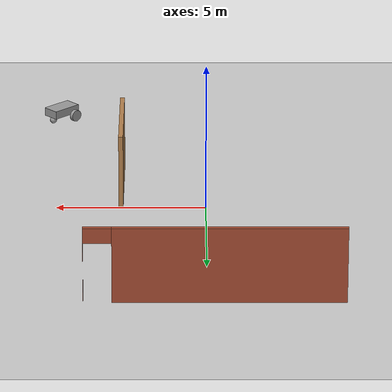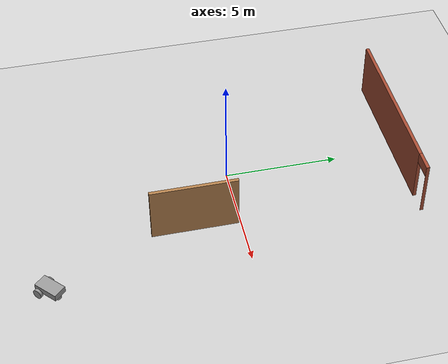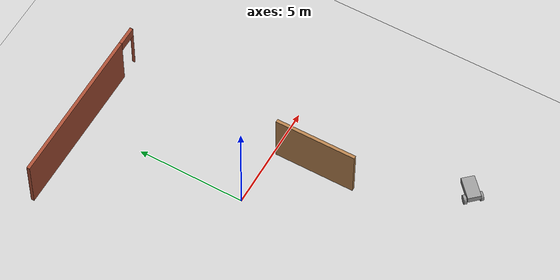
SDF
<sdf version="1.6">
 <world name="default">
  <model name="ground_plane">
   <static>1</static>
   <link name="link">
    <collision name="collision">
     <geometry><plane><normal>0 0 1</normal><size>100 100</size></plane></geometry>
     <surface>
      <contact><collide_bitmask>65535</collide_bitmask></contact>
      <friction><ode><mu>100</mu><mu2>50</mu2></ode></friction>
     </surface>
    </collision>
    <visual name="visual">
     <cast_shadows>0</cast_shadows>
     <geometry><plane><normal>0 0 1</normal><size>100 100</size></plane></geometry>
     <material>
      <script><uri>file://media/materials/scripts/gazebo.material</uri><name>Gazebo/Grey</name></script>
     </material>
    </visual>
   </link>
  </model>
  <model name="cart">
   <link name="link_0">
    <pose>0.000334 -0.065586 0.044669 0 -0 0</pose>
    <inertial>
     <mass>0.183478</mass>
     <inertia>
      <ixx>0.0186131</ixx>
      <ixy>0</ixy>
      <ixz>0</ixz>
      <iyy>0.00678768</iyy>
      <iyz>0</iyz>
      <izz>0.0228966</izz>
     </inertia>
    </inertial>
    <visual name="visual">
     <pose>0 0 0.2 0 -0 0</pose>
     <geometry><box><size>0.6017 1.06558 0.286166</size></box></geometry>
     <material>
      <lighting>1</lighting>
      <script><uri>file://media/materials/scripts/gazebo.material</uri><name>Gazebo/Grey</name></script>
      <shader type="pixel"><normal_map>__default__</normal_map></shader>
      <ambient>0.3 0.3 0.3 1</ambient>
      <diffuse>0.7 0.7 0.7 1</diffuse>
      <specular>0.01 0.01 0.01 1</specular>
      <emissive>0 0 0 1</emissive>
     </material>
    </visual>
    <collision name="collision">
     <pose>0 0 0.2 0 -0 0</pose>
     <geometry><box><size>0.6017 1.06558 0.286166</size></box></geometry>
     <surface>
      <friction>
       <ode><mu>1</mu><mu2>1</mu2><fdir1>0 0 0</fdir1><slip1>0</slip1><slip2>0</slip2></ode>
       <torsional>
        <coefficient>1</coefficient>
        <patch_radius>0</patch_radius>
        <surface_radius>0</surface_radius>
        <use_patch_radius>1</use_patch_radius>
        <ode><slip>0</slip></ode>
       </torsional>
      </friction>
      <bounce><restitution_coefficient>0</restitution_coefficient><threshold>1e+06</threshold></bounce>
      <contact>
       <collide_without_contact>0</collide_without_contact>
       <collide_without_contact_bitmask>1</collide_without_contact_bitmask>
       <collide_bitmask>1</collide_bitmask>
       <ode>
        <soft_cfm>0</soft_cfm>
        <soft_erp>0.2</soft_erp>
        <kp>1e+13</kp>
        <kd>1</kd>
        <max_vel>0.01</max_vel>
        <min_depth>0</min_depth>
       </ode>
       <bullet>
        <split_impulse>1</split_impulse>
        <split_impulse_penetration_threshold>-0.01</split_impulse_penetration_threshold>
        <soft_cfm>0</soft_cfm>
        <soft_erp>0.2</soft_erp>
        <kp>1e+13</kp>
        <kd>1</kd>
       </bullet>
      </contact>
     </surface>
    </collision>
   </link>
   <link name="link_1">
    <pose>-0.001 -0.462788 -0.129729 0 -0 0</pose>
    <inertial>
     <mass>1.886</mass>
     <inertia>
      <ixx>0.0115145</ixx>
      <ixy>0</ixy>
      <ixz>0</ixz>
      <iyy>0.0115145</iyy>
      <iyz>0</iyz>
      <izz>0.0115145</izz>
     </inertia>
     <pose>0 0 0.024704 0 -0 0</pose>
    </inertial>
    <visual name="visual">
     <pose>0 0 0.1 0 -0 0</pose>
     <geometry><sphere><radius>0.123544</radius></sphere></geometry>
     <material>
      <lighting>1</lighting>
      <script><uri>file://media/materials/scripts/gazebo.material</uri><name>Gazebo/Grey</name></script>
      <shader type="pixel"><normal_map>__default__</normal_map></shader>
      <ambient>0.3 0.3 0.3 1</ambient>
      <diffuse>0.7 0.7 0.7 1</diffuse>
      <specular>0.01 0.01 0.01 1</specular>
      <emissive>0 0 0 1</emissive>
     </material>
    </visual>
    <collision name="collision">
     <pose>0 0 0.1 0 -0 0</pose>
     <geometry><sphere><radius>0.123544</radius></sphere></geometry>
     <surface>
      <friction>
       <ode><mu>1</mu><mu2>1</mu2><fdir1>0 0 0</fdir1><slip1>0</slip1><slip2>0</slip2></ode>
       <torsional>
        <coefficient>1</coefficient>
        <patch_radius>0</patch_radius>
        <surface_radius>0</surface_radius>
        <use_patch_radius>1</use_patch_radius>
        <ode><slip>0</slip></ode>
       </torsional>
      </friction>
      <bounce><restitution_coefficient>0</restitution_coefficient><threshold>1e+06</threshold></bounce>
      <contact>
       <collide_without_contact>0</collide_without_contact>
       <collide_without_contact_bitmask>1</collide_without_contact_bitmask>
       <collide_bitmask>1</collide_bitmask>
       <ode>
        <soft_cfm>0</soft_cfm>
        <soft_erp>0.2</soft_erp>
        <kp>1e+13</kp>
        <kd>1</kd>
        <max_vel>0.01</max_vel>
        <min_depth>0</min_depth>
       </ode>
       <bullet>
        <split_impulse>1</split_impulse>
        <split_impulse_penetration_threshold>-0.01</split_impulse_penetration_threshold>
        <soft_cfm>0</soft_cfm>
        <soft_erp>0.2</soft_erp>
        <kp>1e+13</kp>
        <kd>1</kd>
       </bullet>
      </contact>
     </surface>
    </collision>
   </link>
   <link name="link_2">
    <pose>0.368986 0.26419 0.04253 3.14159 1.55999 3.14159</pose>
    <inertial>
     <mass>0.0216399</mass>
     <inertia>
      <ixx>0.000254029</ixx>
      <ixy>0</ixy>
      <ixz>0</ixz>
      <iyy>0.000254029</iyy>
      <iyz>0</iyz>
      <izz>0.000445951</izz>
     </inertia>
    </inertial>
    <visual name="visual">
     <geometry><cylinder><radius>0.203016</radius><length>0.131225</length></cylinder></geometry>
     <material>
      <lighting>1</lighting>
      <script><uri>file://media/materials/scripts/gazebo.material</uri><name>Gazebo/Grey</name></script>
      <shader type="pixel"><normal_map>__default__</normal_map></shader>
      <ambient>0.3 0.3 0.3 1</ambient>
      <diffuse>0.7 0.7 0.7 1</diffuse>
      <specular>0.01 0.01 0.01 1</specular>
      <emissive>0 0 0 1</emissive>
     </material>
    </visual>
    <collision name="collision">
     <geometry><cylinder><radius>0.203016</radius><length>0.131225</length></cylinder></geometry>
     <surface>
      <friction>
       <ode><mu>1</mu><mu2>1</mu2><fdir1>0 0 0</fdir1><slip1>0</slip1><slip2>0</slip2></ode>
       <torsional>
        <coefficient>1</coefficient>
        <patch_radius>0</patch_radius>
        <surface_radius>0</surface_radius>
        <use_patch_radius>1</use_patch_radius>
        <ode><slip>0</slip></ode>
       </torsional>
      </friction>
      <bounce><restitution_coefficient>0</restitution_coefficient><threshold>1e+06</threshold></bounce>
      <contact>
       <collide_without_contact>0</collide_without_contact>
       <collide_without_contact_bitmask>1</collide_without_contact_bitmask>
       <collide_bitmask>1</collide_bitmask>
       <ode>
        <soft_cfm>0</soft_cfm>
        <soft_erp>0.2</soft_erp>
        <kp>1e+13</kp>
        <kd>1</kd>
        <max_vel>0.01</max_vel>
        <min_depth>0</min_depth>
       </ode>
       <bullet>
        <split_impulse>1</split_impulse>
        <split_impulse_penetration_threshold>-0.01</split_impulse_penetration_threshold>
        <soft_cfm>0</soft_cfm>
        <soft_erp>0.2</soft_erp>
        <kp>1e+13</kp>
        <kd>1</kd>
       </bullet>
      </contact>
     </surface>
    </collision>
   </link>
   <link name="link_2_clone">
    <pose>-0.368319 0.26419 0.04253 3.14159 1.55999 3.14159</pose>
    <inertial>
     <mass>0.0216399</mass>
     <inertia>
      <ixx>0.000254029</ixx>
      <ixy>0</ixy>
      <ixz>0</ixz>
      <iyy>0.000254029</iyy>
      <iyz>0</iyz>
      <izz>0.000445951</izz>
     </inertia>
    </inertial>
    <visual name="visual">
     <geometry><cylinder><radius>0.203016</radius><length>0.131225</length></cylinder></geometry>
     <material>
      <lighting>1</lighting>
      <script><uri>file://media/materials/scripts/gazebo.material</uri><name>Gazebo/Grey</name></script>
      <shader type="pixel"><normal_map>__default__</normal_map></shader>
      <ambient>0.3 0.3 0.3 1</ambient>
      <diffuse>0.7 0.7 0.7 1</diffuse>
      <specular>0.01 0.01 0.01 1</specular>
      <emissive>0 0 0 1</emissive>
     </material>
    </visual>
    <collision name="collision">
     <geometry><cylinder><radius>0.203016</radius><length>0.131225</length></cylinder></geometry>
     <surface>
      <friction>
       <ode><mu>1</mu><mu2>1</mu2><fdir1>0 0 0</fdir1><slip1>0</slip1><slip2>0</slip2></ode>
       <torsional>
        <coefficient>1</coefficient>
        <patch_radius>0</patch_radius>
        <surface_radius>0</surface_radius>
        <use_patch_radius>1</use_patch_radius>
        <ode><slip>0</slip></ode>
       </torsional>
      </friction>
      <bounce><restitution_coefficient>0</restitution_coefficient><threshold>1e+06</threshold></bounce>
      <contact>
       <collide_without_contact>0</collide_without_contact>
       <collide_without_contact_bitmask>1</collide_without_contact_bitmask>
       <collide_bitmask>1</collide_bitmask>
       <ode>
        <soft_cfm>0</soft_cfm>
        <soft_erp>0.2</soft_erp>
        <kp>1e+13</kp>
        <kd>1</kd>
        <max_vel>0.01</max_vel>
        <min_depth>0</min_depth>
       </ode>
       <bullet>
        <split_impulse>1</split_impulse>
        <split_impulse_penetration_threshold>-0.01</split_impulse_penetration_threshold>
        <soft_cfm>0</soft_cfm>
        <soft_erp>0.2</soft_erp>
        <kp>1e+13</kp>
        <kd>1</kd>
       </bullet>
      </contact>
     </surface>
    </collision>
   </link>
   <joint name="link_0_JOINT_0" type="revolute">
    <parent>link_0</parent>
    <child>link_2</child>
    <axis>
     <xyz>0 0 1</xyz>
     <use_parent_model_frame>0</use_parent_model_frame>
     <limit>
      <lower>-1.79769e+308</lower>
      <upper>1.79769e+308</upper>
      <effort>-1</effort>
      <velocity>-1</velocity>
     </limit>
     <dynamics>
      <spring_reference>0</spring_reference>
      <spring_stiffness>0</spring_stiffness>
      <damping>0</damping>
     </dynamics>
    </axis>
    <physics>
     <ode><limit><cfm>0</cfm><erp>0.2</erp></limit><suspension><cfm>0</cfm><erp>0.2</erp></suspension></ode>
    </physics>
   </joint>
   <joint name="link_0_JOINT_1" type="revolute">
    <parent>link_0</parent>
    <child>link_2_clone</child>
    <axis>
     <xyz>0 0 1</xyz>
     <use_parent_model_frame>0</use_parent_model_frame>
     <limit>
      <lower>-1.79769e+308</lower>
      <upper>1.79769e+308</upper>
      <effort>-1</effort>
      <velocity>-1</velocity>
     </limit>
     <dynamics>
      <spring_reference>0</spring_reference>
      <spring_stiffness>0</spring_stiffness>
      <damping>0</damping>
     </dynamics>
    </axis>
    <physics>
     <ode><limit><cfm>0</cfm><erp>0.2</erp></limit><suspension><cfm>0</cfm><erp>0.2</erp></suspension></ode>
    </physics>
   </joint>
   <joint name="link_0_JOINT_2" type="ball">
    <parent>link_0</parent>
    <child>link_1</child>
    <physics>
     <ode><limit><cfm>0</cfm><erp>0.2</erp></limit><suspension><cfm>0</cfm><erp>0.2</erp></suspension></ode>
    </physics>
   </joint>
   <static>0</static>
   <pose>5.05319 -8.31744 0.158308 0.010889 -1e-06 2.32186</pose>
  </model>
  <model name="office">
   <link name="Wall_10">
    <pose>3.71196 8.6392 0 0 -0 0</pose>
    <visual name="Wall_10_Visual_1">
     <pose>4.12333 0 1.25 0 -0 0</pose>
     <geometry><box><size>0.003332 0.15 2.5</size></box></geometry>
     <material>
      <script><uri>file://media/materials/scripts/gazebo.material</uri><name>Gazebo/Bricks</name></script>
      <ambient>1 1 1 1</ambient>
      <shader type="pixel"/>
      <diffuse>1 1 1 1</diffuse>
      <specular>0.2 0.2 0.2 1</specular>
      <emissive>0 0 0 1</emissive>
     </material>
     <meta><layer>0</layer></meta>
    </visual>
    <visual name="Wall_10_Visual_0">
     <pose>-0.451666 0 1.25 0 -0 0</pose>
     <geometry><box><size>7.34667 0.15 2.5</size></box></geometry>
     <material>
      <script><uri>file://media/materials/scripts/gazebo.material</uri><name>Gazebo/Bricks</name></script>
      <ambient>1 1 1 1</ambient>
      <shader type="pixel"/>
      <diffuse>1 1 1 1</diffuse>
      <specular>0.2 0.2 0.2 1</specular>
      <emissive>0 0 0 1</emissive>
     </material>
     <meta><layer>0</layer></meta>
    </visual>
    <visual name="Wall_10_Visual_2">
     <pose>3.67167 0 2.25 0 -0 0</pose>
     <geometry><box><size>0.9 0.15 0.5</size></box></geometry>
     <material>
      <script><uri>file://media/materials/scripts/gazebo.material</uri><name>Gazebo/Bricks</name></script>
      <ambient>1 1 1 1</ambient>
      <shader type="pixel"/>
      <diffuse>1 1 1 1</diffuse>
      <specular>0.2 0.2 0.2 1</specular>
      <emissive>0 0 0 1</emissive>
     </material>
     <meta><layer>0</layer></meta>
    </visual>
    <collision name="Wall_10_Collision_0">
     <pose>-0.451666 0 1.25 0 -0 0</pose>
     <geometry><box><size>7.34667 0.15 2.5</size></box></geometry>
     <surface>
      <friction>
       <ode><mu>1</mu><mu2>1</mu2><fdir1>0 0 0</fdir1><slip1>0</slip1><slip2>0</slip2></ode>
       <torsional>
        <coefficient>1</coefficient>
        <patch_radius>0</patch_radius>
        <surface_radius>0</surface_radius>
        <use_patch_radius>1</use_patch_radius>
        <ode><slip>0</slip></ode>
       </torsional>
      </friction>
      <bounce><restitution_coefficient>0</restitution_coefficient><threshold>1e+06</threshold></bounce>
      <contact>
       <collide_without_contact>0</collide_without_contact>
       <collide_without_contact_bitmask>1</collide_without_contact_bitmask>
       <collide_bitmask>1</collide_bitmask>
       <ode>
        <soft_cfm>0</soft_cfm>
        <soft_erp>0.2</soft_erp>
        <kp>1e+13</kp>
        <kd>1</kd>
        <max_vel>0.01</max_vel>
        <min_depth>0</min_depth>
       </ode>
       <bullet>
        <split_impulse>1</split_impulse>
        <split_impulse_penetration_threshold>-0.01</split_impulse_penetration_threshold>
        <soft_cfm>0</soft_cfm>
        <soft_erp>0.2</soft_erp>
        <kp>1e+13</kp>
        <kd>1</kd>
       </bullet>
      </contact>
     </surface>
    </collision>
    <collision name="Wall_10_Collision_2">
     <pose>3.67167 0 2.25 0 -0 0</pose>
     <geometry><box><size>0.9 0.15 0.5</size></box></geometry>
     <surface>
      <friction>
       <ode><mu>1</mu><mu2>1</mu2><fdir1>0 0 0</fdir1><slip1>0</slip1><slip2>0</slip2></ode>
       <torsional>
        <coefficient>1</coefficient>
        <patch_radius>0</patch_radius>
        <surface_radius>0</surface_radius>
        <use_patch_radius>1</use_patch_radius>
        <ode><slip>0</slip></ode>
       </torsional>
      </friction>
      <bounce><restitution_coefficient>0</restitution_coefficient><threshold>1e+06</threshold></bounce>
      <contact>
       <collide_without_contact>0</collide_without_contact>
       <collide_without_contact_bitmask>1</collide_without_contact_bitmask>
       <collide_bitmask>1</collide_bitmask>
       <ode>
        <soft_cfm>0</soft_cfm>
        <soft_erp>0.2</soft_erp>
        <kp>1e+13</kp>
        <kd>1</kd>
        <max_vel>0.01</max_vel>
        <min_depth>0</min_depth>
       </ode>
       <bullet>
        <split_impulse>1</split_impulse>
        <split_impulse_penetration_threshold>-0.01</split_impulse_penetration_threshold>
        <soft_cfm>0</soft_cfm>
        <soft_erp>0.2</soft_erp>
        <kp>1e+13</kp>
        <kd>1</kd>
       </bullet>
      </contact>
     </surface>
    </collision>
    <collision name="Wall_10_Collision_1">
     <pose>4.12333 0 1.25 0 -0 0</pose>
     <geometry><box><size>0.003332 0.15 2.5</size></box></geometry>
     <surface>
      <friction>
       <ode><mu>1</mu><mu2>1</mu2><fdir1>0 0 0</fdir1><slip1>0</slip1><slip2>0</slip2></ode>
       <torsional>
        <coefficient>1</coefficient>
        <patch_radius>0</patch_radius>
        <surface_radius>0</surface_radius>
        <use_patch_radius>1</use_patch_radius>
        <ode><slip>0</slip></ode>
       </torsional>
      </friction>
      <bounce><restitution_coefficient>0</restitution_coefficient><threshold>1e+06</threshold></bounce>
      <contact>
       <collide_without_contact>0</collide_without_contact>
       <collide_without_contact_bitmask>1</collide_without_contact_bitmask>
       <collide_bitmask>1</collide_bitmask>
       <ode>
        <soft_cfm>0</soft_cfm>
        <soft_erp>0.2</soft_erp>
        <kp>1e+13</kp>
        <kd>1</kd>
        <max_vel>0.01</max_vel>
        <min_depth>0</min_depth>
       </ode>
       <bullet>
        <split_impulse>1</split_impulse>
        <split_impulse_penetration_threshold>-0.01</split_impulse_penetration_threshold>
        <soft_cfm>0</soft_cfm>
        <soft_erp>0.2</soft_erp>
        <kp>1e+13</kp>
        <kd>1</kd>
       </bullet>
      </contact>
     </surface>
    </collision>
   </link>
   <link name="Wall_24">
    <pose>6.78266 -1.03979 0 0 -0 1.5708</pose>
    <visual name="Wall_24_Visual">
     <pose>0 0 1.25 0 -0 0</pose>
     <geometry><box><size>3.75 0.15 2.5</size></box></geometry>
     <material>
      <script><uri>file://media/materials/scripts/gazebo.material</uri><name>Gazebo/Wood</name></script>
      <ambient>0.435294 0.796078 0.67451 1</ambient>
      <shader type="pixel"/>
      <diffuse>1 1 1 1</diffuse>
      <specular>0.2 0.2 0.2 1</specular>
      <emissive>0 0 0 1</emissive>
     </material>
     <meta><layer>0</layer></meta>
    </visual>
    <collision name="Wall_24_Collision">
     <pose>0 0 1.25 0 -0 0</pose>
     <geometry><box><size>3.75 0.15 2.5</size></box></geometry>
     <surface>
      <friction>
       <ode><mu>1</mu><mu2>1</mu2><fdir1>0 0 0</fdir1><slip1>0</slip1><slip2>0</slip2></ode>
       <torsional>
        <coefficient>1</coefficient>
        <patch_radius>0</patch_radius>
        <surface_radius>0</surface_radius>
        <use_patch_radius>1</use_patch_radius>
        <ode><slip>0</slip></ode>
       </torsional>
      </friction>
      <bounce><restitution_coefficient>0</restitution_coefficient><threshold>1e+06</threshold></bounce>
      <contact>
       <collide_without_contact>0</collide_without_contact>
       <collide_without_contact_bitmask>1</collide_without_contact_bitmask>
       <collide_bitmask>1</collide_bitmask>
       <ode>
        <soft_cfm>0</soft_cfm>
        <soft_erp>0.2</soft_erp>
        <kp>1e+13</kp>
        <kd>1</kd>
        <max_vel>0.01</max_vel>
        <min_depth>0</min_depth>
       </ode>
       <bullet>
        <split_impulse>1</split_impulse>
        <split_impulse_penetration_threshold>-0.01</split_impulse_penetration_threshold>
        <soft_cfm>0</soft_cfm>
        <soft_erp>0.2</soft_erp>
        <kp>1e+13</kp>
        <kd>1</kd>
       </bullet>
      </contact>
     </surface>
    </collision>
   </link>
   <static>1</static>
   <pose>-3.94455 -0.92637 0 0 -0 0</pose>
  </model>
 </world>
</sdf>
